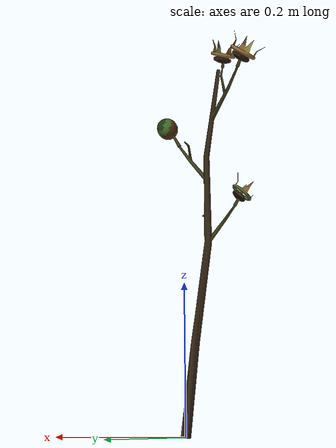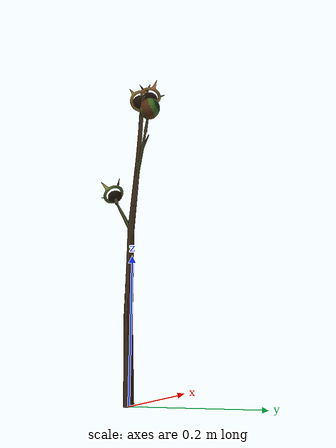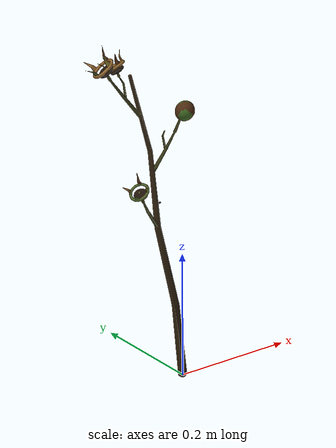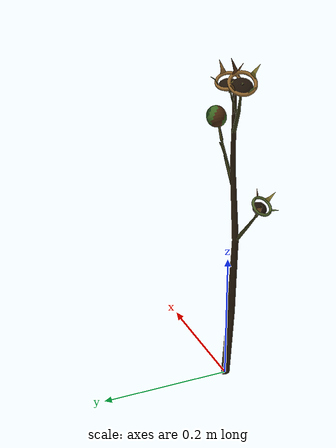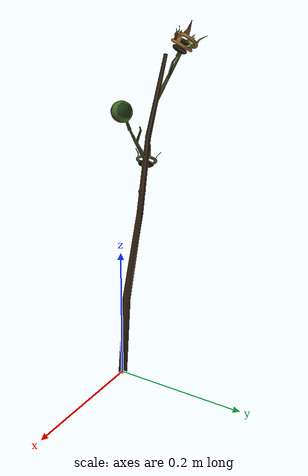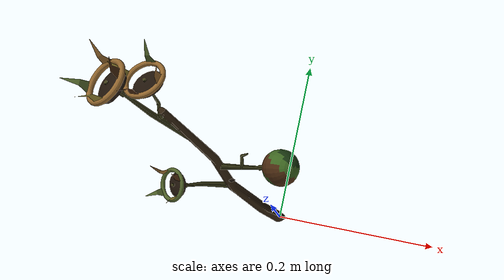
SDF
<?xml version="1.0"?>
<sdf version="1.7">
  <model name="branch_variant_D_sparse_green_01">
    <static>true</static>
    <link name="branch_variant_D_sparse_green_01_link">
      <visual name="branch_variant_D_sparse_green_01_visual">
        <geometry><mesh><uri>model://branch_variant_D_sparse_green_01/meshes/branch_variant_D_sparse_green_01.dae</uri></mesh></geometry>
      </visual>
      <collision name="branch_variant_D_sparse_green_01_stem_collision">
        <pose>0 0 0.24000 0 0 0</pose>
        <geometry><cylinder><radius>0.018</radius><length>0.48000</length></cylinder></geometry>
      </collision>
    </link>
  </model>
</sdf>
